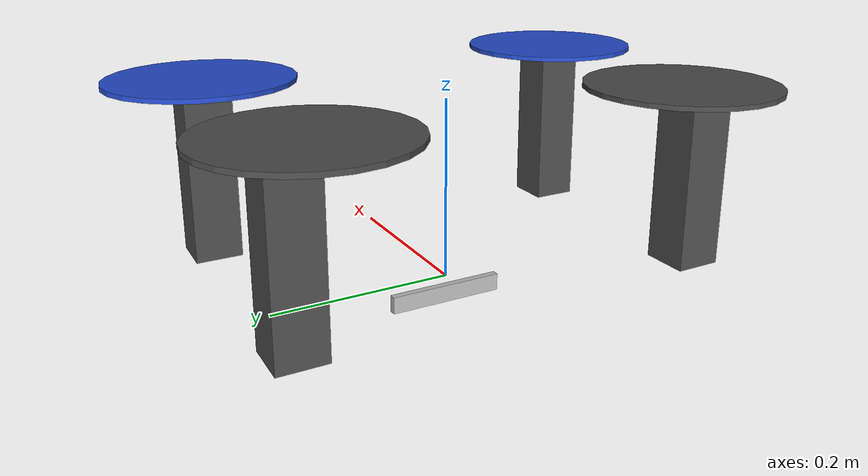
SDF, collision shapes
<?xml version='1.0'?>
<sdf version="1.6">
  <model name="drone_with_realsense_camera">
    <include>
      <uri>model://iris_base</uri>
    </include>

    <link name="realsense_cam_link">
      <pose>0 0 -0.02 0 0 0</pose>
      <inertial>
        <mass>0.0615752</mass>
        <inertia>
          <ixx>9.108e-05</ixx>
          <iyy>2.51e-06</iyy>
          <izz>8.931e-05</izz>
        </inertia>
      </inertial>

      <visual name="realsense_visual">
        <geometry>
          <mesh>
            <uri>model://realsense_camera/meshes/realsense.dae</uri>
          </mesh>
        </geometry>
      </visual>

      <collision name="realsense_collision">
        <geometry>
          <box>
            <size>0.0078 0.130 0.0192</size>
          </box>
        </geometry>
      </collision>

      <sensor name="realsense_sensor" type="camera">
        <pose>0 0 0.15 0 0 0</pose>
        <camera>
          <horizontal_fov>1.2</horizontal_fov>
          <image>
            <width>640</width>
            <height>480</height>
          </image>
          <clip>
            <near>0.1</near>
            <far>1000</far>
          </clip>
        </camera>
        <always_on>1</always_on>
        <update_rate>30</update_rate>
        <visualize>true</visualize>
        <plugin name="realsense_plugin" filename="librealsense_gazebo_plugin.so">
          <always_on>true</always_on>
          <update_rate>30</update_rate>
          <cameraName>realsense</cameraName>
          <imageTopicName>image_raw</imageTopicName>
          <cameraInfoTopicName>camera_info</cameraInfoTopicName>
          <frameName>realsense_cam_link</frameName>
        </plugin>
      </sensor>
    </link>

    <joint name="camera_mount" type="fixed">
      <child>realsense_cam_link</child>
      <parent>iris::base_link</parent>
      <axis>
        <xyz>0 0 1</xyz>
        <limit>
          <upper>0</upper>
          <lower>0</lower>
        </limit>
      </axis>
    </joint>

    <!-- Rotor Plugins -->
    <plugin name="rotor_0_blade_1" filename="libLiftDragPlugin.so">
      <a0>0.3</a0>
      <alpha_stall>1.4</alpha_stall>
      <cla>4.2500</cla>
      <cda>0.10</cda>
      <cma>0.00</cma>
      <cla_stall>-0.025</cla_stall>
      <cda_stall>0.0</cda_stall>
      <cma_stall>0.0</cma_stall>
      <area>0.002</area>
      <air_density>1.2041</air_density>
      <cp>0.084 0 0</cp>
      <forward>0 1 0</forward>
      <upward>0 0 1</upward>
      <link_name>iris::rotor_0</link_name>
    </plugin>
    <plugin name="rotor_0_blade_2" filename="libLiftDragPlugin.so">
      <a0>0.3</a0>
      <alpha_stall>1.4</alpha_stall>
      <cla>4.2500</cla>
      <cda>0.10</cda>
      <cma>0.00</cma>
      <cla_stall>-0.025</cla_stall>
      <cda_stall>0.0</cda_stall>
      <cma_stall>0.0</cma_stall>
      <area>0.002</area>
      <air_density>1.2041</air_density>
      <cp>-0.084 0 0</cp>
      <forward>0 -1 0</forward>
      <upward>0 0 1</upward>
      <link_name>iris::rotor_0</link_name>
    </plugin>

    <plugin name="rotor_1_blade_1" filename="libLiftDragPlugin.so">
      <a0>0.3</a0>
      <alpha_stall>1.4</alpha_stall>
      <cla>4.2500</cla>
      <cda>0.10</cda>
      <cma>0.00</cma>
      <cla_stall>-0.025</cla_stall>
      <cda_stall>0.0</cda_stall>
      <cma_stall>0.0</cma_stall>
      <area>0.002</area>
      <air_density>1.2041</air_density>
      <cp>0.084 0 0</cp>
      <forward>0 1 0</forward>
      <upward>0 0 1</upward>
      <link_name>iris::rotor_1</link_name>
    </plugin>
    <plugin name="rotor_1_blade_2" filename="libLiftDragPlugin.so">
      <a0>0.3</a0>
      <alpha_stall>1.4</alpha_stall>
      <cla>4.2500</cla>
      <cda>0.10</cda>
      <cma>0.00</cma>
      <cla_stall>-0.025</cla_stall>
      <cda_stall>0.0</cda_stall>
      <cma_stall>0.0</cma_stall>
      <area>0.002</area>
      <air_density>1.2041</air_density>
      <cp>-0.084 0 0</cp>
      <forward>0 -1 0</forward>
      <upward>0 0 1</upward>
      <link_name>iris::rotor_1</link_name>
    </plugin>

    <plugin name="rotor_2_blade_1" filename="libLiftDragPlugin.so">
      <a0>0.3</a0>
      <alpha_stall>1.4</alpha_stall>
      <cla>4.2500</cla>
      <cda>0.10</cda>
      <cma>0.00</cma>
      <cla_stall>-0.025</cla_stall>
      <cda_stall>0.0</cda_stall>
      <cma_stall>0.0</cma_stall>
      <area>0.002</area>
      <air_density>1.2041</air_density>
      <cp>0.084 0 0</cp>
      <forward>0 -1 0</forward>
      <upward>0 0 1</upward>
      <link_name>iris::rotor_2</link_name>
    </plugin>
    <plugin name="rotor_2_blade_2" filename="libLiftDragPlugin.so">
      <a0>0.3</a0>
      <alpha_stall>1.4</alpha_stall>
      <cla>4.2500</cla>
      <cda>0.10</cda>
      <cma>0.00</cma>
      <cla_stall>-0.025</cla_stall>
      <cda_stall>0.0</cda_stall>
      <cma_stall>0.0</cma_stall>
      <area>0.002</area>
      <air_density>1.2041</air_density>
      <cp>-0.084 0 0</cp>
      <forward>0 1 0</forward>
      <upward>0 0 1</upward>
      <link_name>iris::rotor_2</link_name>
    </plugin>

    <plugin name="rotor_3_blade_1" filename="libLiftDragPlugin.so">
      <a0>0.3</a0>
      <alpha_stall>1.4</alpha_stall>
      <cla>4.2500</cla>
      <cda>0.10</cda>
      <cma>0.00</cma>
      <cla_stall>-0.025</cla_stall>
      <cda_stall>0.0</cda_stall>
      <cma_stall>0.0</cma_stall>
      <area>0.002</area>
      <air_density>1.2041</air_density>
      <cp>0.084 0 0</cp>
      <forward>0 -1 0</forward>
      <upward>0 0 1</upward>
      <link_name>iris::rotor_3</link_name>
    </plugin>
    <plugin name="rotor_3_blade_2" filename="libLiftDragPlugin.so">
      <a0>0.3</a0>
      <alpha_stall>1.4</alpha_stall>
      <cla>4.2500</cla>
      <cda>0.10</cda>
      <cma>0.00</cma>
      <cla_stall>-0.025</cla_stall>
      <cda_stall>0.0</cda_stall>
      <cma_stall>0.0</cma_stall>
      <area>0.002</area>
      <air_density>1.2041</air_density>
      <cp>-0.084 0 0</cp>
      <forward>0 1 0</forward>
      <upward>0 0 1</upward>
      <link_name>iris::rotor_3</link_name>
    </plugin>
  </model>
</sdf>

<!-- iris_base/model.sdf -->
<sdf version='1.6'>
  <model name='iris'>
    <pose>0 0 0.194923 0 0 0</pose>
    <link name='base_link'>
      <velocity_decay>
        <linear>0.0</linear>
        <angular>0.0</angular>
      </velocity_decay>
      <inertial>
        <pose>0 0 0 0 0 0</pose>
        <mass>1.5</mass>
        <inertia>
          <ixx>0.008</ixx>
          <ixy>0</ixy>
          <ixz>0</ixz>
          <iyy>0.015</iyy>
          <iyz>0</iyz>
          <izz>0.017</izz>
        </inertia>
      </inertial>
      <collision name='base_link_collision_fl'>
        <pose>0.13 0.22 -0.08 0 0 0</pose>
        <geometry>
          <box>
            <size>0.05 0.05 0.18</size>
          </box>
        </geometry>
        <surface>
          <contact>
            <ode>
              <max_vel>100.0</max_vel>
              <min_depth>0.001</min_depth>
            </ode>
          </contact>
          <friction>
            <ode>
              <mu>1.0</mu>
              <mu2>1.0</mu2>
            </ode>
          </friction>
        </surface>
      </collision>
      <collision name='base_link_collision_fr'>
        <pose>0.13 -0.22 -0.08 0 0 0</pose>
        <geometry>
          <box>
            <size>0.05 0.05 0.18</size>
          </box>
        </geometry>
        <surface>
          <contact>
            <ode>
              <max_vel>100.0</max_vel>
              <min_depth>0.001</min_depth>
            </ode>
          </contact>
          <friction>
            <ode>
              <mu>1.0</mu>
              <mu2>1.0</mu2>
            </ode>
          </friction>
        </surface>
      </collision>
      <collision name='base_link_collision_br'>
        <pose>-0.13 -0.22 -0.08 0 0 0</pose>
        <geometry>
          <box>
            <size>0.05 0.05 0.18</size>
          </box>
        </geometry>
        <surface>
          <contact>
            <ode>
              <max_vel>100.0</max_vel>
              <min_depth>0.001</min_depth>
            </ode>
          </contact>
          <friction>
            <ode>
              <mu>1.0</mu>
              <mu2>1.0</mu2>
            </ode>
          </friction>
        </surface>
      </collision>
      <collision name='base_link_collision_bl'>
        <pose>-0.13 0.22 -0.08 0 0 0</pose>
        <geometry>
          <box>
            <size>0.05 0.05 0.18</size>
          </box>
        </geometry>
        <surface>
          <contact>
            <ode>
              <max_vel>100.0</max_vel>
              <min_depth>0.001</min_depth>
            </ode>
          </contact>
          <friction>
            <ode>
              <mu>1.0</mu>
              <mu2>1.0</mu2>
            </ode>
          </friction>
        </surface>
      </collision>
      <visual name='base_link_visual'>
        <geometry>
          <mesh>
            <uri>model://iris_base/meshes/iris.dae</uri>
          </mesh>
        </geometry>
        <material>
          <script>
            <name>Gazebo/DarkGrey</name>
          </script>
        </material>
      </visual>

      <visual name='front_left_leg_visual'>
        <pose>0.123 0.22 -0.11 0 0 0</pose>
        <geometry>
          <cylinder>
            <radius>0.005</radius>
            <length>0.17</length>
          </cylinder>
        </geometry>
        <material>
          <script>
            <name>Gazebo/FlatBlack</name>
            <uri>file://media/materials/scripts/gazebo.material</uri>
          </script>
        </material>
      </visual>
      <visual name='front_right_leg_visual'>
        <pose>0.123 -0.22 -0.11 0 0 0</pose>
        <geometry>
          <cylinder>
            <radius>0.005</radius>
            <length>0.17</length>
          </cylinder>
        </geometry>
        <material>
          <script>
            <name>Gazebo/FlatBlack</name>
            <uri>file://media/materials/scripts/gazebo.material</uri>
          </script>
        </material>
      </visual>
      <visual name='rear_left_leg_visual'>
        <pose>-0.140 0.21 -0.11 0 0 0</pose>
        <geometry>
          <cylinder>
            <radius>0.005</radius>
            <length>0.17</length>
          </cylinder>
        </geometry>
        <material>
          <script>
            <name>Gazebo/FlatBlack</name>
            <uri>file://media/materials/scripts/gazebo.material</uri>
          </script>
        </material>
      </visual>
      <visual name='rear_right_leg_visual'>
        <pose>-0.140 -0.21 -0.11 0 0 0</pose>
        <geometry>
          <cylinder>
            <radius>0.005</radius>
            <length>0.17</length>
          </cylinder>
        </geometry>
        <material>
          <script>
            <name>Gazebo/FlatBlack</name>
            <uri>file://media/materials/scripts/gazebo.material</uri>
          </script>
        </material>
      </visual>
    </link>
    <link name='iris/ground_truth/odometry_sensorgt_link'>
      <pose>0 0 0 0 -0 0</pose>
      <inertial>
        <pose>0 0 0 0 -0 0</pose>
        <mass>0.15</mass>
        <inertia>
          <ixx>0.0001</ixx>
          <ixy>0</ixy>
          <ixz>0</ixz>
          <iyy>0.0002</iyy>
          <iyz>0</iyz>
          <izz>0.0002</izz>
        </inertia>
      </inertial>
    </link>
    <joint name='iris/ground_truth/odometry_sensorgt_joint' type='revolute'>
      <child>iris/ground_truth/odometry_sensorgt_link</child>
      <parent>base_link</parent>
      <axis>
        <xyz>0 0 1</xyz>
        <limit>
          <lower>0</lower>
          <upper>0</upper>
          <effort>0</effort>
          <velocity>0</velocity>
        </limit>
        <dynamics>
          <damping>1.0</damping>
        </dynamics>
        <use_parent_model_frame>1</use_parent_model_frame>
      </axis>
      <physics>
        <ode>
          <implicit_spring_damper>1</implicit_spring_damper>
        </ode>
      </physics>
    </joint>
    <link name='iris/imu_link'>
      <inertial>
        <pose>0 0 0 0 0 0</pose>
        <mass>0.15</mass>
        <inertia>
          <ixx>0.00001</ixx>
          <ixy>0</ixy>
          <ixz>0</ixz>
          <iyy>0.00002</iyy>
          <iyz>0</iyz>
          <izz>0.00002</izz>
        </inertia>
      </inertial>
      <sensor name="imu_sensor" type="imu">
        <pose>0 0 0 3.141593 0 0</pose>
        <always_on>1</always_on>
        <update_rate>1000.0</update_rate>
      </sensor>
    </link>
    <joint name='iris/imu_joint' type='revolute'>
      <child>iris/imu_link</child>
      <parent>base_link</parent>
      <axis>
        <xyz>0 0 1</xyz>
        <limit>
          <lower>0</lower>
          <upper>0</upper>
          <effort>0</effort>
          <velocity>0</velocity>
        </limit>
        <dynamics>
          <damping>1.0</damping>
        </dynamics>
        <use_parent_model_frame>1</use_parent_model_frame>
      </axis>
      <physics>
        <ode>
          <implicit_spring_damper>1</implicit_spring_damper>
        </ode>
      </physics>
    </joint>
    <link name='rotor_0'>
      <pose>0.13 -0.22 0.023 0 -0 0</pose>
      <inertial>
        <pose>0 0 0 0 -0 0</pose>
        <mass>0.025</mass>
        <inertia>
          <ixx>9.75e-06</ixx>
          <ixy>0</ixy>
          <ixz>0</ixz>
          <iyy>0.000166704</iyy>
          <iyz>0</iyz>
          <izz>0.000167604</izz>
        </inertia>
      </inertial>
      <collision name='rotor_0_collision'>
        <pose>0 0 0 0 -0 0</pose>
        <geometry>
          <cylinder>
            <length>0.005</length>
            <radius>0.1</radius>
          </cylinder>
        </geometry>
        <surface>
          <contact>
            <ode/>
          </contact>
          <friction>
            <ode/>
          </friction>
        </surface>
      </collision>
      <visual name='rotor_0_visual'>
        <pose>0 0 0 0 -0 0</pose>
        <geometry>
          <mesh>
            <scale>1 1 1</scale>
            <uri>model://iris_base/meshes/iris_prop_ccw.dae</uri>
          </mesh>
        </geometry>
        <material>
          <script>
            <name>Gazebo/Blue</name>
            <uri>__default__</uri>
          </script>
        </material>
      </visual>
      <gravity>1</gravity>
      <velocity_decay/>
      <self_collide>0</self_collide>
    </link>
    <joint name='rotor_0_joint' type='revolute'>
      <child>rotor_0</child>
      <parent>base_link</parent>
      <axis>
        <xyz>0 0 1</xyz>
        <limit>
          <lower>-1e+16</lower>
          <upper>1e+16</upper>
        </limit>
        <dynamics>
          <damping>0.004</damping>
        </dynamics>
        <use_parent_model_frame>1</use_parent_model_frame>
      </axis>
      <physics>
        <ode>
          <implicit_spring_damper>1</implicit_spring_damper>
        </ode>
      </physics>
    </joint>
    <link name='rotor_1'>
      <pose>-0.13 0.2 0.023 0 -0 0</pose>
      <inertial>
        <pose>0 0 0 0 -0 0</pose>
        <mass>0.025</mass>
        <inertia>
          <ixx>9.75e-06</ixx>
          <ixy>0</ixy>
          <ixz>0</ixz>
          <iyy>0.000166704</iyy>
          <iyz>0</iyz>
          <izz>0.000167604</izz>
        </inertia>
      </inertial>
      <collision name='rotor_1_collision'>
        <pose>0 0 0 0 -0 0</pose>
        <geometry>
          <cylinder>
            <length>0.005</length>
            <radius>0.1</radius>
          </cylinder>
        </geometry>
        <surface>
          <contact>
            <ode/>
          </contact>
          <friction>
            <ode/>
          </friction>
        </surface>
      </collision>
      <visual name='rotor_1_visual'>
        <pose>0 0 0 0 -0 0</pose>
        <geometry>
          <mesh>
            <scale>1 1 1</scale>
            <uri>model://iris_base/meshes/iris_prop_ccw.dae</uri>
          </mesh>
        </geometry>
        <material>
          <script>
            <name>Gazebo/DarkGrey</name>
            <uri>__default__</uri>
          </script>
        </material>
      </visual>
      <gravity>1</gravity>
      <velocity_decay/>
      <self_collide>0</self_collide>
    </link>
    <joint name='rotor_1_joint' type='revolute'>
      <child>rotor_1</child>
      <parent>base_link</parent>
      <axis>
        <xyz>0 0 1</xyz>
        <limit>
          <lower>-1e+16</lower>
          <upper>1e+16</upper>
        </limit>
        <dynamics>
          <damping>0.004</damping>
        </dynamics>
        <use_parent_model_frame>1</use_parent_model_frame>
      </axis>
      <physics>
        <ode>
          <implicit_spring_damper>1</implicit_spring_damper>
        </ode>
      </physics>
    </joint>
    <link name='rotor_2'>
      <pose>0.13 0.22 0.023 0 -0 0</pose>
      <inertial>
        <pose>0 0 0 0 -0 0</pose>
        <mass>0.025</mass>
        <inertia>
          <ixx>9.75e-06</ixx>
          <ixy>0</ixy>
          <ixz>0</ixz>
          <iyy>0.000166704</iyy>
          <iyz>0</iyz>
          <izz>0.000167604</izz>
        </inertia>
      </inertial>
      <collision name='rotor_2_collision'>
        <pose>0 0 0 0 -0 0</pose>
        <geometry>
          <cylinder>
            <length>0.005</length>
            <radius>0.1</radius>
          </cylinder>
        </geometry>
        <surface>
          <contact>
            <ode/>
          </contact>
          <friction>
            <ode/>
          </friction>
        </surface>
      </collision>
      <visual name='rotor_2_visual'>
        <pose>0 0 0 0 -0 0</pose>
        <geometry>
          <mesh>
            <scale>1 1 1</scale>
            <uri>model://iris_base/meshes/iris_prop_cw.dae</uri>
          </mesh>
        </geometry>
        <material>
          <script>
            <name>Gazebo/Blue</name>
            <uri>__default__</uri>
          </script>
        </material>
      </visual>
      <gravity>1</gravity>
      <velocity_decay/>
      <self_collide>0</self_collide>
    </link>
    <joint name='rotor_2_joint' type='revolute'>
      <child>rotor_2</child>
      <parent>base_link</parent>
      <axis>
        <xyz>0 0 1</xyz>
        <limit>
          <lower>-1e+16</lower>
          <upper>1e+16</upper>
        </limit>
        <dynamics>
          <damping>0.004</damping>
        </dynamics>
        <use_parent_model_frame>1</use_parent_model_frame>
      </axis>
      <physics>
        <ode>
          <implicit_spring_damper>1</implicit_spring_damper>
        </ode>
      </physics>
    </joint>
    <link name='rotor_3'>
      <pose>-0.13 -0.2 0.023 0 -0 0</pose>
      <inertial>
        <pose>0 0 0 0 -0 0</pose>
        <mass>0.025</mass>
        <inertia>
          <ixx>9.75e-06</ixx>
          <ixy>0</ixy>
          <ixz>0</ixz>
          <iyy>0.000166704</iyy>
          <iyz>0</iyz>
          <izz>0.000167604</izz>
        </inertia>
      </inertial>
      <collision name='rotor_3_collision'>
        <pose>0 0 0 0 -0 0</pose>
        <geometry>
          <cylinder>
            <length>0.005</length>
            <radius>0.1</radius>
          </cylinder>
        </geometry>
        <surface>
          <contact>
            <ode/>
          </contact>
          <friction>
            <ode/>
          </friction>
        </surface>
      </collision>
      <visual name='rotor_3_visual'>
        <pose>0 0 0 0 -0 0</pose>
        <geometry>
          <mesh>
            <scale>1 1 1</scale>
            <uri>model://iris_base/meshes/iris_prop_cw.dae</uri>
          </mesh>
        </geometry>
        <material>
          <script>
            <name>Gazebo/DarkGrey</name>
            <uri>__default__</uri>
          </script>
        </material>
      </visual>
      <gravity>1</gravity>
      <velocity_decay/>
      <self_collide>0</self_collide>
    </link>
    <joint name='rotor_3_joint' type='revolute'>
      <child>rotor_3</child>
      <parent>base_link</parent>
      <axis>
        <xyz>0 0 1</xyz>
        <limit>
          <lower>-1e+16</lower>
          <upper>1e+16</upper>
        </limit>
        <dynamics>
          <damping>0.004</damping>
        </dynamics>
        <use_parent_model_frame>1</use_parent_model_frame>
      </axis>
      <physics>
        <ode>
          <implicit_spring_damper>1</implicit_spring_damper>
        </ode>
      </physics>
    </joint>
    <static>0</static>
  </model>
</sdf>
